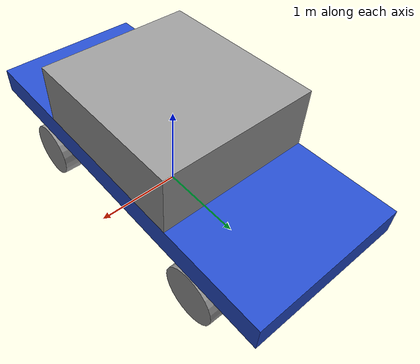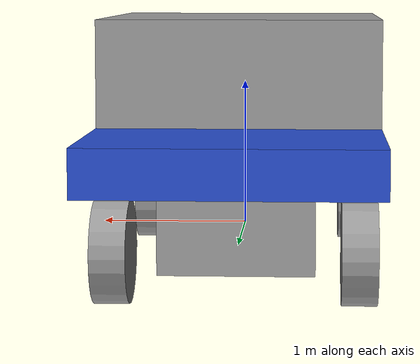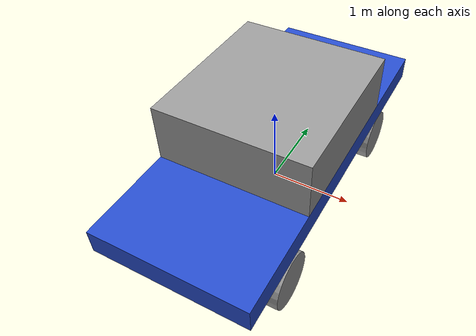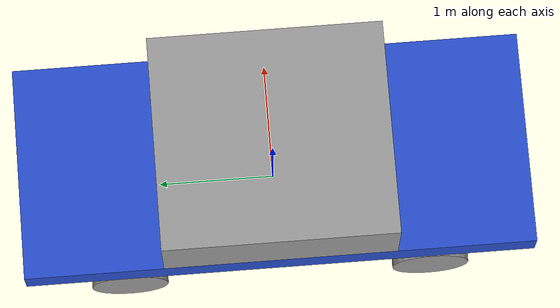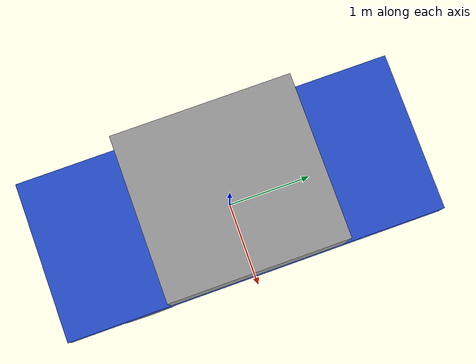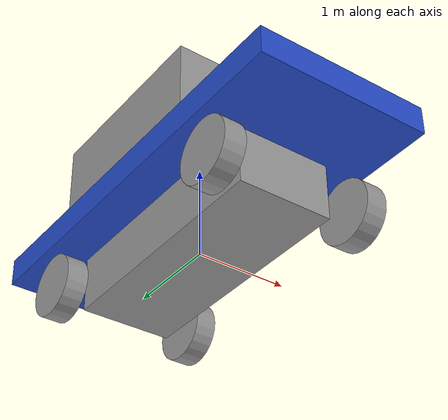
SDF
<?xml version='1.0'?>
<sdf version='1.6'>
  <model name='car'>
    <link name='link_0'>
      <inertial>
        <mass>1</mass>
        <inertia>
          <ixx>0.166667</ixx>
          <ixy>0</ixy>
          <ixz>0</ixz>
          <iyy>0.166667</iyy>
          <iyz>0</iyz>
          <izz>0.166667</izz>
        </inertia>
        <pose frame=''>0 0 0 0 -0 0</pose>
      </inertial>
      <pose frame=''>-0 -0 -0.04496 0 -0 0</pose>
      <gravity>1</gravity>
      <self_collide>0</self_collide>
      <kinematic>0</kinematic>
      <enable_wind>0</enable_wind>
      <visual name='visual'>
        <pose frame=''>0 0 0.2 0 -0 0</pose>
        <geometry>
          <box>
            <size>1 2.638 0.6</size>
          </box>
        </geometry>
        <material>
          <lighting>1</lighting>
          <script>
            <uri>file://media/materials/scripts/gazebo.material</uri>
            <name>Gazebo/Grey</name>
          </script>
          <shader type='vertex'>
            <normal_map>__default__</normal_map>
          </shader>
          <ambient>0.3 0.3 0.3 1</ambient>
          <diffuse>0.7 0.7 0.7 1</diffuse>
          <specular>0.01 0.01 0.01 1</specular>
          <emissive>0 0 0 1</emissive>
        </material>
        <transparency>0</transparency>
        <cast_shadows>1</cast_shadows>
      </visual>
      <collision name='collision'>
        <laser_retro>0</laser_retro>
        <max_contacts>10</max_contacts>
        <pose frame=''>0 0 0.2 0 -0 0</pose>
        <geometry>
          <box>
            <size>1 2.638 0.6</size>
          </box>
        </geometry>
        <surface>
          <friction>
            <ode>
              <mu>1</mu>
              <mu2>1</mu2>
              <fdir1>0 0 0</fdir1>
              <slip1>0</slip1>
              <slip2>0</slip2>
            </ode>
            <torsional>
              <coefficient>1</coefficient>
              <patch_radius>0</patch_radius>
              <surface_radius>0</surface_radius>
              <use_patch_radius>1</use_patch_radius>
              <ode>
                <slip>0</slip>
              </ode>
            </torsional>
          </friction>
          <bounce>
            <restitution_coefficient>0</restitution_coefficient>
            <threshold>1e+06</threshold>
          </bounce>
          <contact>
            <collide_without_contact>0</collide_without_contact>
            <collide_without_contact_bitmask>1</collide_without_contact_bitmask>
            <collide_bitmask>1</collide_bitmask>
            <ode>
              <soft_cfm>0</soft_cfm>
              <soft_erp>0.2</soft_erp>
              <kp>1e+13</kp>
              <kd>1</kd>
              <max_vel>0.01</max_vel>
              <min_depth>0</min_depth>
            </ode>
            <bullet>
              <split_impulse>1</split_impulse>
              <split_impulse_penetration_threshold>-0.01</split_impulse_penetration_threshold>
              <soft_cfm>0</soft_cfm>
              <soft_erp>0.2</soft_erp>
              <kp>1e+13</kp>
              <kd>1</kd>
            </bullet>
          </contact>
        </surface>
      </collision>
    </link>
    <link name='link_1'>
      <inertial>
        <mass>1</mass>
        <inertia>
          <ixx>0.145833</ixx>
          <ixy>0</ixy>
          <ixz>0</ixz>
          <iyy>0.145833</iyy>
          <iyz>0</iyz>
          <izz>0.125</izz>
        </inertia>
        <pose frame=''>0 0 0 0 -0 0</pose>
      </inertial>
      <pose frame=''>0.788 -1.315 0.01124 0 1.57 0</pose>
      <gravity>1</gravity>
      <self_collide>0</self_collide>
      <kinematic>0</kinematic>
      <enable_wind>0</enable_wind>
      <visual name='visual'>
        <pose frame=''>0 0 0 0 -0 0</pose>
        <geometry>
          <cylinder>
            <radius>0.3322</radius>
            <length>0.225</length>
          </cylinder>
        </geometry>
        <material>
          <lighting>1</lighting>
          <script>
            <uri>file://media/materials/scripts/gazebo.material</uri>
            <name>Gazebo/Grey</name>

          </script>
          <shader type='vertex'>
            <normal_map>__default__</normal_map>
          </shader>
          <ambient>0.3 0.3 0.3 1</ambient>
          <diffuse>0.7 0.7 0.7 1</diffuse>
          <specular>0.01 0.01 0.01 1</specular>
          <emissive>0 0 0 1</emissive>
        </material>
        <transparency>0</transparency>
        <cast_shadows>1</cast_shadows>
      </visual>
      <collision name='collision'>
        <laser_retro>0</laser_retro>
        <max_contacts>10</max_contacts>
        <pose frame=''>0 0 0 0 -0 0</pose>
        <geometry>
          <cylinder>
            <radius>0.3322</radius>
            <length>0.225</length>
          </cylinder>
        </geometry>
        <surface>
          <friction>
            <ode>
              <mu>1</mu>
              <mu2>1</mu2>
              <fdir1>0 0 0</fdir1>
              <slip1>0</slip1>
              <slip2>0</slip2>
            </ode>
            <torsional>
              <coefficient>1</coefficient>
              <patch_radius>0</patch_radius>
              <surface_radius>0</surface_radius>
              <use_patch_radius>1</use_patch_radius>
              <ode>
                <slip>0</slip>
              </ode>
            </torsional>
          </friction>
          <bounce>
            <restitution_coefficient>0</restitution_coefficient>
            <threshold>1e+06</threshold>
          </bounce>
          <contact>
            <collide_without_contact>0</collide_without_contact>
            <collide_without_contact_bitmask>1</collide_without_contact_bitmask>
            <collide_bitmask>1</collide_bitmask>
            <ode>
              <soft_cfm>0</soft_cfm>
              <soft_erp>0.2</soft_erp>
              <kp>1e+13</kp>
              <kd>1</kd>
              <max_vel>0.01</max_vel>
              <min_depth>0</min_depth>
            </ode>
            <bullet>
              <split_impulse>1</split_impulse>
              <split_impulse_penetration_threshold>-0.01</split_impulse_penetration_threshold>
              <soft_cfm>0</soft_cfm>
              <soft_erp>0.2</soft_erp>
              <kp>1e+13</kp>
              <kd>1</kd>
            </bullet>
          </contact>
        </surface>
      </collision>
    </link>
    <link name='link_1_0'>
      <inertial>
        <mass>1</mass>
        <inertia>
          <ixx>0.166667</ixx>
          <ixy>0</ixy>
          <ixz>0</ixz>
          <iyy>0.166667</iyy>
          <iyz>0</iyz>
          <izz>0.166667</izz>
        </inertia>
        <pose frame=''>0 0 0 0 -0 0</pose>
      </inertial>
      <pose frame=''>0 0 0.60504 0 1e-06 -1.9e-05</pose>
      <gravity>1</gravity>
      <self_collide>0</self_collide>
      <kinematic>0</kinematic>
      <enable_wind>0</enable_wind>
      <visual name='visual'>
        <pose frame=''>0 0 0 0 -0 0</pose>
        <geometry>
          <box>
            <size>1.841 4.382 0.3</size>
          </box>
        </geometry>
        <material>
          <lighting>1</lighting>
          <script>
            <uri>file://media/materials/scripts/gazebo.material</uri>
            <name>Gazebo/Blue</name>
          </script>
          <shader type='pixel'>
            <normal_map>__default__</normal_map>
          </shader>
          <ambient>0.3 0.3 0.3 1</ambient>
          <diffuse>0.7 0.7 0.7 1</diffuse>
          <specular>0.01 0.01 0.01 1</specular>
          <emissive>0 0 0 1</emissive>
        </material>
        <transparency>0</transparency>
        <cast_shadows>1</cast_shadows>
      </visual>
      <collision name='collision'>
        <laser_retro>0</laser_retro>
        <max_contacts>10</max_contacts>
        <pose frame=''>0 0 0 0 -0 0</pose>
        <geometry>
          <box>
            <size>1.841 4.382 0.3</size>
          </box>
        </geometry>
        <surface>
          <friction>
            <ode>
              <mu>1</mu>
              <mu2>1</mu2>
              <fdir1>0 0 0</fdir1>
              <slip1>0</slip1>
              <slip2>0</slip2>
            </ode>
            <torsional>
              <coefficient>1</coefficient>
              <patch_radius>0</patch_radius>
              <surface_radius>0</surface_radius>
              <use_patch_radius>1</use_patch_radius>
              <ode>
                <slip>0</slip>
              </ode>
            </torsional>
          </friction>
          <bounce>
            <restitution_coefficient>0</restitution_coefficient>
            <threshold>1e+06</threshold>
          </bounce>
          <contact>
            <collide_without_contact>0</collide_without_contact>
            <collide_without_contact_bitmask>1</collide_without_contact_bitmask>
            <collide_bitmask>1</collide_bitmask>
            <ode>
              <soft_cfm>0</soft_cfm>
              <soft_erp>0.2</soft_erp>
              <kp>1e+13</kp>
              <kd>1</kd>
              <max_vel>0.01</max_vel>
              <min_depth>0</min_depth>
            </ode>
            <bullet>
              <split_impulse>1</split_impulse>
              <split_impulse_penetration_threshold>-0.01</split_impulse_penetration_threshold>
              <soft_cfm>0</soft_cfm>
              <soft_erp>0.2</soft_erp>
              <kp>1e+13</kp>
              <kd>1</kd>
            </bullet>
          </contact>
        </surface>
      </collision>
    </link>
    <link name='link_1_clone'>
      <inertial>
        <mass>1</mass>
        <inertia>
          <ixx>0.145833</ixx>
          <ixy>0</ixy>
          <ixz>0</ixz>
          <iyy>0.145833</iyy>
          <iyz>0</iyz>
          <izz>0.125</izz>
        </inertia>
        <pose frame=''>0 0 0 0 -0 0</pose>
      </inertial>
      <pose frame=''>-0.788 -1.315 0.01124 0 1.57 0</pose>
      <gravity>1</gravity>
      <self_collide>0</self_collide>
      <kinematic>0</kinematic>
      <enable_wind>0</enable_wind>
      <visual name='visual'>
        <pose frame=''>0 0 0 0 -0 0</pose>
        <geometry>
          <cylinder>
            <radius>0.3322</radius>
            <length>0.225</length>
          </cylinder>
        </geometry>
        <material>
          <lighting>1</lighting>
          <script>
            <uri>file://media/materials/scripts/gazebo.material</uri>
            <name>Gazebo/Grey</name>
          </script>
          <shader type='vertex'>
            <normal_map>__default__</normal_map>
          </shader>
          <ambient>0.3 0.3 0.3 1</ambient>
          <diffuse>0.7 0.7 0.7 1</diffuse>
          <specular>0.01 0.01 0.01 1</specular>
          <emissive>0 0 0 1</emissive>
        </material>
        <transparency>0</transparency>
        <cast_shadows>1</cast_shadows>
      </visual>
      <collision name='collision'>
        <laser_retro>0</laser_retro>
        <max_contacts>10</max_contacts>
        <pose frame=''>0 0 0 0 -0 0</pose>
        <geometry>
          <cylinder>
            <radius>0.3322</radius>
            <length>0.225</length>
          </cylinder>
        </geometry>
        <surface>
          <friction>
            <ode>
              <mu>1</mu>
              <mu2>1</mu2>
              <fdir1>0 0 0</fdir1>
              <slip1>0</slip1>
              <slip2>0</slip2>
            </ode>
            <torsional>
              <coefficient>1</coefficient>
              <patch_radius>0</patch_radius>
              <surface_radius>0</surface_radius>
              <use_patch_radius>1</use_patch_radius>
              <ode>
                <slip>0</slip>
              </ode>
            </torsional>
          </friction>
          <bounce>
            <restitution_coefficient>0</restitution_coefficient>
            <threshold>1e+06</threshold>
          </bounce>
          <contact>
            <collide_without_contact>0</collide_without_contact>
            <collide_without_contact_bitmask>1</collide_without_contact_bitmask>
            <collide_bitmask>1</collide_bitmask>
            <ode>
              <soft_cfm>0</soft_cfm>
              <soft_erp>0.2</soft_erp>
              <kp>1e+13</kp>
              <kd>1</kd>
              <max_vel>0.01</max_vel>
              <min_depth>0</min_depth>
            </ode>
            <bullet>
              <split_impulse>1</split_impulse>
              <split_impulse_penetration_threshold>-0.01</split_impulse_penetration_threshold>
              <soft_cfm>0</soft_cfm>
              <soft_erp>0.2</soft_erp>
              <kp>1e+13</kp>
              <kd>1</kd>
            </bullet>
          </contact>
        </surface>
      </collision>
    </link>
    <link name='link_1_clone_clone'>
      <inertial>
        <mass>1</mass>
        <inertia>
          <ixx>0.145833</ixx>
          <ixy>0</ixy>
          <ixz>0</ixz>
          <iyy>0.145833</iyy>
          <iyz>0</iyz>
          <izz>0.125</izz>
        </inertia>
        <pose frame=''>0 0 0 0 -0 0</pose>
      </inertial>
      <pose frame=''>-0.7735 1.315 0.01124 0 1.57 0</pose>
      <gravity>1</gravity>
      <self_collide>0</self_collide>
      <kinematic>0</kinematic>
      <enable_wind>0</enable_wind>
      <visual name='visual'>
        <pose frame=''>0 0 0 0 -0 0</pose>
        <geometry>
          <cylinder>
            <radius>0.3322</radius>
            <length>0.225</length>
          </cylinder>
        </geometry>
        <material>
          <lighting>1</lighting>
          <script>
            <uri>file://media/materials/scripts/gazebo.material</uri>
            <name>Gazebo/Grey</name>
          </script>
          <shader type='vertex'>
            <normal_map>__default__</normal_map>
          </shader>
          <ambient>0.3 0.3 0.3 1</ambient>
          <diffuse>0.7 0.7 0.7 1</diffuse>
          <specular>0.01 0.01 0.01 1</specular>
          <emissive>0 0 0 1</emissive>
        </material>
        <transparency>0</transparency>
        <cast_shadows>1</cast_shadows>
      </visual>
      <collision name='collision'>
        <laser_retro>0</laser_retro>
        <max_contacts>10</max_contacts>
        <pose frame=''>0 0 0 0 -0 0</pose>
        <geometry>
          <cylinder>
            <radius>0.3322</radius>
            <length>0.225</length>
          </cylinder>
        </geometry>
        <surface>
          <friction>
            <ode>
              <mu>1</mu>
              <mu2>1</mu2>
              <fdir1>0 0 0</fdir1>
              <slip1>0</slip1>
              <slip2>0</slip2>
            </ode>
            <torsional>
              <coefficient>1</coefficient>
              <patch_radius>0</patch_radius>
              <surface_radius>0</surface_radius>
              <use_patch_radius>1</use_patch_radius>
              <ode>
                <slip>0</slip>
              </ode>
            </torsional>
          </friction>
          <bounce>
            <restitution_coefficient>0</restitution_coefficient>
            <threshold>1e+06</threshold>
          </bounce>
          <contact>
            <collide_without_contact>0</collide_without_contact>
            <collide_without_contact_bitmask>1</collide_without_contact_bitmask>
            <collide_bitmask>1</collide_bitmask>
            <ode>
              <soft_cfm>0</soft_cfm>
              <soft_erp>0.2</soft_erp>
              <kp>1e+13</kp>
              <kd>1</kd>
              <max_vel>0.01</max_vel>
              <min_depth>0</min_depth>
            </ode>
            <bullet>
              <split_impulse>1</split_impulse>
              <split_impulse_penetration_threshold>-0.01</split_impulse_penetration_threshold>
              <soft_cfm>0</soft_cfm>
              <soft_erp>0.2</soft_erp>
              <kp>1e+13</kp>
              <kd>1</kd>
            </bullet>
          </contact>
        </surface>
      </collision>
    </link>
    <link name='link_1_clone_clone_0'>
      <inertial>
        <mass>1</mass>
        <inertia>
          <ixx>0.145833</ixx>
          <ixy>0</ixy>
          <ixz>0</ixz>
          <iyy>0.145833</iyy>
          <iyz>0</iyz>
          <izz>0.125</izz>
        </inertia>
        <pose frame=''>0 0 0 0 -0 0</pose>
      </inertial>
      <pose frame=''>0.7735 1.315 0.01124 0 1.57 0</pose>
      <gravity>1</gravity>
      <self_collide>0</self_collide>
      <kinematic>0</kinematic>
      <enable_wind>0</enable_wind>
      <visual name='visual'>
        <pose frame=''>0 0 0 0 -0 0</pose>
        <geometry>
          <cylinder>
            <radius>0.3322</radius>
            <length>0.225</length>
          </cylinder>
        </geometry>
        <material>
          <lighting>1</lighting>
          <script>
            <uri>file://media/materials/scripts/gazebo.material</uri>
            <name>Gazebo/Grey</name>
          </script>
          <shader type='vertex'>
            <normal_map>__default__</normal_map>
          </shader>
          <ambient>0.3 0.3 0.3 1</ambient>
          <diffuse>0.7 0.7 0.7 1</diffuse>
          <specular>0.01 0.01 0.01 1</specular>
          <emissive>0 0 0 1</emissive>
        </material>
        <transparency>0</transparency>
        <cast_shadows>1</cast_shadows>
      </visual>
      <collision name='collision'>
        <laser_retro>0</laser_retro>
        <max_contacts>10</max_contacts>
        <pose frame=''>0 0 0 0 -0 0</pose>
        <geometry>
          <cylinder>
            <radius>0.3322</radius>
            <length>0.225</length>
          </cylinder>
        </geometry>
        <surface>
          <friction>
            <ode>
              <mu>1</mu>
              <mu2>1</mu2>
              <fdir1>0 0 0</fdir1>
              <slip1>0</slip1>
              <slip2>0</slip2>
            </ode>
            <torsional>
              <coefficient>1</coefficient>
              <patch_radius>0</patch_radius>
              <surface_radius>0</surface_radius>
              <use_patch_radius>1</use_patch_radius>
              <ode>
                <slip>0</slip>
              </ode>
            </torsional>
          </friction>
          <bounce>
            <restitution_coefficient>0</restitution_coefficient>
            <threshold>1e+06</threshold>
          </bounce>
          <contact>
            <collide_without_contact>0</collide_without_contact>
            <collide_without_contact_bitmask>1</collide_without_contact_bitmask>
            <collide_bitmask>1</collide_bitmask>
            <ode>
              <soft_cfm>0</soft_cfm>
              <soft_erp>0.2</soft_erp>
              <kp>1e+13</kp>
              <kd>1</kd>
              <max_vel>0.01</max_vel>
              <min_depth>0</min_depth>
            </ode>
            <bullet>
              <split_impulse>1</split_impulse>
              <split_impulse_penetration_threshold>-0.01</split_impulse_penetration_threshold>
              <soft_cfm>0</soft_cfm>
              <soft_erp>0.2</soft_erp>
              <kp>1e+13</kp>
              <kd>1</kd>
            </bullet>
          </contact>
        </surface>
      </collision>
    </link>
    <link name='link_2'>
      <inertial>
        <mass>1</mass>
        <inertia>
          <ixx>0.166667</ixx>
          <ixy>0</ixy>
          <ixz>0</ixz>
          <iyy>0.166667</iyy>
          <iyz>0</iyz>
          <izz>0.166667</izz>
        </inertia>
        <pose frame=''>0 0 0 0 -0 0</pose>
      </inertial>
      <pose frame=''>0 0 1.10504 0 1e-06 -1.9e-05</pose>
      <gravity>1</gravity>
      <self_collide>0</self_collide>
      <kinematic>0</kinematic>
      <enable_wind>0</enable_wind>
      <visual name='visual'>
        <pose frame=''>0 0 0 0 -0 0</pose>
        <geometry>
          <box>
            <size>1.841 2 0.7</size>
          </box>
        </geometry>
        <material>
          <lighting>1</lighting>
          <script>
            <uri>file://media/materials/scripts/gazebo.material</uri>
            <name>Gazebo/Grey</name>
          </script>
          <shader type='pixel'>
            <normal_map>__default__</normal_map>
          </shader>
          <ambient>0.3 0.3 0.3 1</ambient>
          <diffuse>0.7 0.7 0.7 1</diffuse>
          <specular>0.01 0.01 0.01 1</specular>
          <emissive>0 0 0 1</emissive>
        </material>
        <transparency>0</transparency>
        <cast_shadows>1</cast_shadows>
      </visual>
      <collision name='collision'>
        <laser_retro>0</laser_retro>
        <max_contacts>10</max_contacts>
        <pose frame=''>0 0 0 0 -0 0</pose>
        <geometry>
          <box>
            <size>1.841 2 0.7</size>
          </box>
        </geometry>
        <surface>
          <friction>
            <ode>
              <mu>1</mu>
              <mu2>1</mu2>
              <fdir1>0 0 0</fdir1>
              <slip1>0</slip1>
              <slip2>0</slip2>
            </ode>
            <torsional>
              <coefficient>1</coefficient>
              <patch_radius>0</patch_radius>
              <surface_radius>0</surface_radius>
              <use_patch_radius>1</use_patch_radius>
              <ode>
                <slip>0</slip>
              </ode>
            </torsional>
          </friction>
          <bounce>
            <restitution_coefficient>0</restitution_coefficient>
            <threshold>1e+06</threshold>
          </bounce>
          <contact>
            <collide_without_contact>0</collide_without_contact>
            <collide_without_contact_bitmask>1</collide_without_contact_bitmask>
            <collide_bitmask>1</collide_bitmask>
            <ode>
              <soft_cfm>0</soft_cfm>
              <soft_erp>0.2</soft_erp>
              <kp>1e+13</kp>
              <kd>1</kd>
              <max_vel>0.01</max_vel>
              <min_depth>0</min_depth>
            </ode>
            <bullet>
              <split_impulse>1</split_impulse>
              <split_impulse_penetration_threshold>-0.01</split_impulse_penetration_threshold>
              <soft_cfm>0</soft_cfm>
              <soft_erp>0.2</soft_erp>
              <kp>1e+13</kp>
              <kd>1</kd>
            </bullet>
          </contact>
        </surface>
      </collision>
    </link>
    <joint name='base_top' type='fixed'>
      <parent>link_0</parent>
      <child>link_1_0</child>
      <pose frame=''>0 0 0 0 -0 0</pose>
      <physics>
        <ode>
          <limit>
            <cfm>0</cfm>
            <erp>0.2</erp>
          </limit>
          <suspension>
            <cfm>0</cfm>
            <erp>0.2</erp>
          </suspension>
        </ode>
      </physics>
    </joint>
    <joint name='front_left' type='universal'>
      <parent>link_0</parent>
      <child>link_1</child>
      <pose frame=''>0 0 0 0 -0 0</pose>
      <axis>
        <xyz>-1 0 0</xyz>
        <use_parent_model_frame>0</use_parent_model_frame>
        <limit>
          <lower>-0.61</lower>
          <upper>0.61</upper>
          <effort>-1</effort>
          <velocity>-1</velocity>
        </limit>
        <dynamics>
          <spring_reference>0</spring_reference>
          <spring_stiffness>0</spring_stiffness>
          <damping>0</damping>
          <friction>0</friction>
        </dynamics>
      </axis>
      <axis2>
        <xyz>0 0 1</xyz>
        <use_parent_model_frame>0</use_parent_model_frame>
        <dynamics>
          <spring_reference>0</spring_reference>
          <spring_stiffness>0</spring_stiffness>
          <damping>0</damping>
          <friction>0</friction>
        </dynamics>
        <limit>
          <lower>-1e+16</lower>
          <upper>1e+16</upper>
          <effort>-1</effort>
          <velocity>-1</velocity>
        </limit>
      </axis2>
      <physics>
        <ode>
          <limit>
            <cfm>0</cfm>
            <erp>0.2</erp>
          </limit>
          <suspension>
            <cfm>0</cfm>
            <erp>0.2</erp>
          </suspension>
        </ode>
      </physics>
    </joint>
    <joint name='front_right' type='universal'>
      <parent>link_0</parent>
      <child>link_1_clone</child>
      <pose frame=''>0 0 0 0 -0 0</pose>
      <axis>
        <xyz>-1 0 0</xyz>
        <use_parent_model_frame>0</use_parent_model_frame>
        <limit>
          <lower>-0.61</lower>
          <upper>0.61</upper>
          <effort>-1</effort>
          <velocity>-1</velocity>
        </limit>
        <dynamics>
          <spring_reference>0</spring_reference>
          <spring_stiffness>0</spring_stiffness>
          <damping>0</damping>
          <friction>0</friction>
        </dynamics>
      </axis>
      <axis2>
        <xyz>0 0 1</xyz>
        <use_parent_model_frame>0</use_parent_model_frame>
        <dynamics>
          <spring_reference>0</spring_reference>
          <spring_stiffness>0</spring_stiffness>
          <damping>0</damping>
          <friction>0</friction>
        </dynamics>
        <limit>
          <lower>-1e+16</lower>
          <upper>1e+16</upper>
          <effort>-1</effort>
          <velocity>-1</velocity>
        </limit>
      </axis2>
      <physics>
        <ode>
          <limit>
            <cfm>0</cfm>
            <erp>0.2</erp>
          </limit>
          <suspension>
            <cfm>0</cfm>
            <erp>0.2</erp>
          </suspension>
        </ode>
      </physics>
    </joint>
    <joint name='rear_left' type='revolute'>
      <parent>link_0</parent>
      <child>link_1_clone_clone_0</child>
      <pose frame=''>0 0 0 0 -0 0</pose>
      <axis>
        <xyz>0 0 1</xyz>
        <use_parent_model_frame>0</use_parent_model_frame>
        <limit>
          <lower>-1.79769e+308</lower>
          <upper>1.79769e+308</upper>
          <effort>-1</effort>
          <velocity>-1</velocity>
        </limit>
        <dynamics>
          <spring_reference>0</spring_reference>
          <spring_stiffness>0</spring_stiffness>
          <damping>0</damping>
          <friction>0</friction>
        </dynamics>
      </axis>
      <physics>
        <ode>
          <limit>
            <cfm>0</cfm>
            <erp>0.2</erp>
          </limit>
          <suspension>
            <cfm>0</cfm>
            <erp>0.2</erp>
          </suspension>
        </ode>
      </physics>
    </joint>
    <joint name='rear_right' type='revolute'>
      <parent>link_0</parent>
      <child>link_1_clone_clone</child>
      <pose frame=''>0 0 0 0 -0 0</pose>
      <axis>
        <xyz>0 0 1</xyz>
        <use_parent_model_frame>0</use_parent_model_frame>
        <limit>
          <lower>-1.79769e+308</lower>
          <upper>1.79769e+308</upper>
          <effort>-1</effort>
          <velocity>-1</velocity>
        </limit>
        <dynamics>
          <spring_reference>0</spring_reference>
          <spring_stiffness>0</spring_stiffness>
          <damping>0</damping>
          <friction>0</friction>
        </dynamics>
      </axis>
      <physics>
        <ode>
          <limit>
            <cfm>0</cfm>
            <erp>0.2</erp>
          </limit>
          <suspension>
            <cfm>0</cfm>
            <erp>0.2</erp>
          </suspension>
        </ode>
      </physics>
    </joint>
    <joint name='top_cabin' type='fixed'>
      <parent>link_1_0</parent>
      <child>link_2</child>
      <pose frame=''>0 0 0 0 -0 0</pose>
      <physics>
        <ode>
          <limit>
            <cfm>0</cfm>
            <erp>0.2</erp>
          </limit>
          <suspension>
            <cfm>0</cfm>
            <erp>0.2</erp>
          </suspension>
        </ode>
      </physics>
    </joint>
    <static>0</static>
    <allow_auto_disable>1</allow_auto_disable>
  </model>
</sdf>
